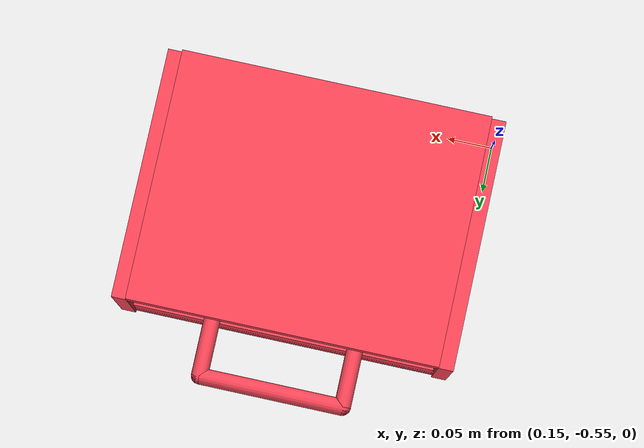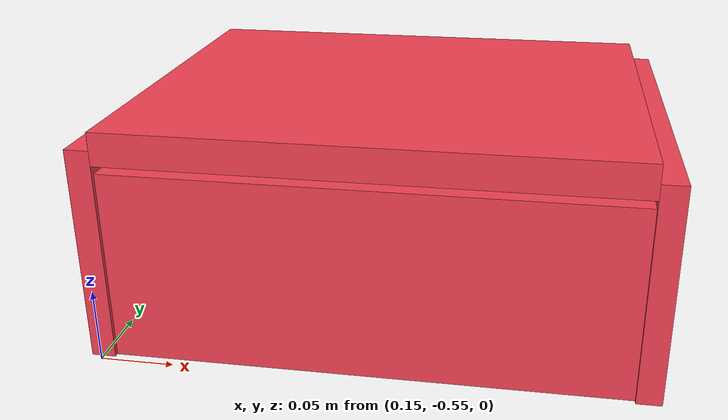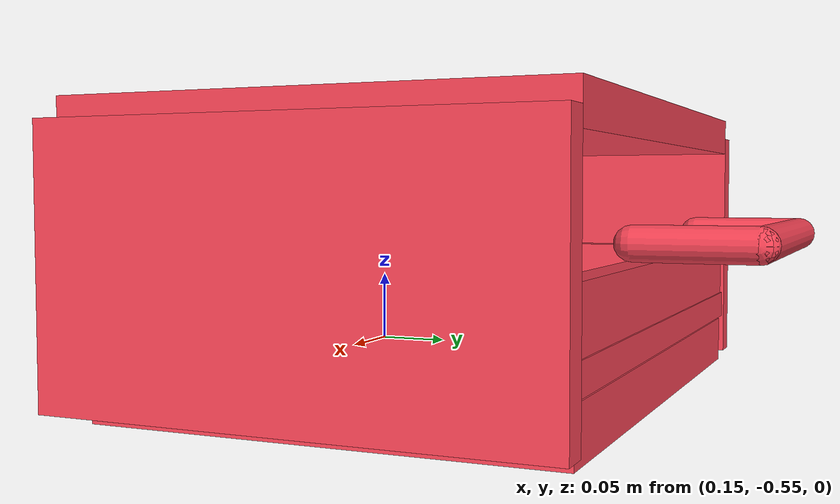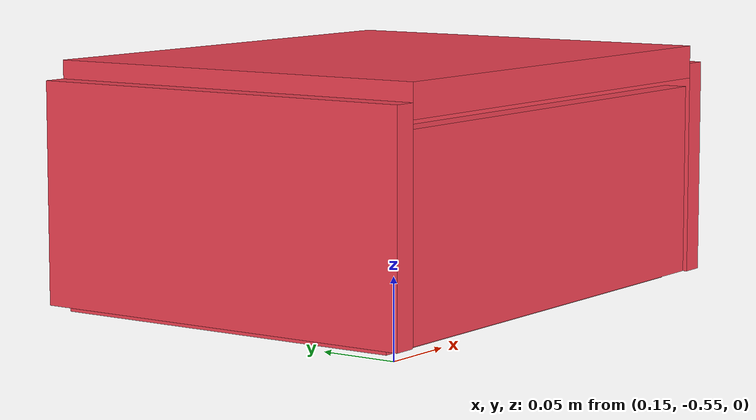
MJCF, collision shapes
<mujoco model="drawer">
    <compiler angle="radian" inertiafromgeom="auto" inertiagrouprange="1 5"/>

    <asset>
        <material name="drawer_col" rgba="0.96 0.26 0.33 0.5" shininess="0" specular="0"/>
        <material name="drawer_handle" rgba=".9 .9 .9 1" shininess="1" reflectance=".7" specular=".5"/>
        <material name="drawer_body" rgba="0.96 0.965 0.96 1" shininess="0.1" reflectance="0.02" specular="0.03"/>
        <material name="drawer_case" rgba="0.96 0.965 0.96 0.36" shininess="0.15" reflectance="0.04" specular="0.08"/>
    </asset>

    <default>
        <default class="drawer_base">
            <joint armature="0.001" damping="2" frictionloss="2" limited="true"/>
            <geom conaffinity="0" contype="0" group="1" type="mesh"/>
            <position ctrllimited="true" ctrlrange="0 1.57"/>
            <default class="drawer_viz">
                <geom condim="4" type="mesh"/>
            </default>
            <default class="drawer_col">
                <geom conaffinity="1" condim="3" contype="1" group="4" material="drawer_col" solimp="0.99 0.99 0.01" solref="0.01 1"/>
            </default>
            <site type="sphere" size=".01" rgba="0 1 0 1" group="5"/>
        </default>
    </default>

    <asset>
        <mesh file="metaworld/drawer/drawer.stl" name="drawer" scale="1.6 1.35 0.9"/>
        <mesh file="metaworld/drawer/drawercase.stl" name="drawercase" scale="1.6 1.35 0.9"/>
        <mesh file="metaworld/drawer/drawerhandle.stl" name="drawerhandle" scale="1.45 1 1"/>
    </asset>

    <worldbody>
        <body childclass="drawer_base" name="drawer_base" pos="0.33 -0.42 0.084" euler="0 0 3.14" mocap="true">
            <geom material="drawer_case" mesh="drawercase"/>
            <geom class="drawer_col" pos="-0.175 0 -0.006" size="0.008 0.135 0.072" type="box" mass=".05"/>
            <geom class="drawer_col" pos="0.175 0 -0.006" size="0.008 0.135 0.072" type="box" mass=".05"/>
            <geom class="drawer_col" pos="0 0.124 -0.014" size="0.167 0.008 0.064" type="box" mass=".05"/>
            <geom class="drawer_col" pos="0 -0.008 -0.07" size="0.167 0.124 0.014" type="box" mass=".05"/>
            <geom class="drawer_col" pos="0 0 0.067" size="0.167 0.135 0.011" type="box" mass=".05"/>
            <body name="drawer_link_virtual" pos="0 -0.01 0.006">
                <body name="drawer_link_virtual_handle" pos="0 -0.203 -0.01">
                    <site name="drawer_handle_center_target" pos="0 0 0.0001" group="5"/>
                </body>
            </body>
            <body name="drawer_link" pos="0 -0.01 0.006">
                <site name="drawer_handle_center" pos="0 -0.203 -0.01" group="5"/>
                <joint type="slide" range="-0.16 0" axis="0 1 0" name="drawer_slide" pos="0 0 0" damping="2"/>
                <geom material="drawer_body" mesh="drawer"/>
                <geom material="drawer_handle" mesh="drawerhandle" pos="0 -0.147 0" name="drawer_handle"/>
                <geom class="drawer_col" pos="0 -0.115 -0.028" size="0.165 0.008 0.016" type="box" mass=".04"/>
                <geom class="drawer_col" pos="0 0.115 -0.028" size="0.165 0.008 0.016" type="box" mass=".04"/>
                <geom class="drawer_col" pos="-0.157 0 -0.028" size="0.008 0.107 0.016" type="box" mass=".04"/>
                <geom class="drawer_col" pos="0.157 0 -0.028" size="0.008 0.107 0.016" type="box" mass=".04"/>
                <geom class="drawer_col" pos="0 0 -0.052" size="0.165 0.124 0.008" type="box" mass=".04"/>
                <geom class="drawer_col" euler="1.571 0 0" pos="-0.078 -0.153 0.0" size="0.009 0.03" type="capsule" mass=".06"/>
                <geom class="drawer_col" euler="0 1.57 0" pos="0 -0.183 0" size="0.009 0.078" type="capsule" mass=".06"/>
                <geom class="drawer_col" euler="1.57 0 0" pos="0.078 -0.153 0" size="0.009 0.03" type="capsule" mass=".06"/>
            </body>
        </body>
    </worldbody>
</mujoco>
